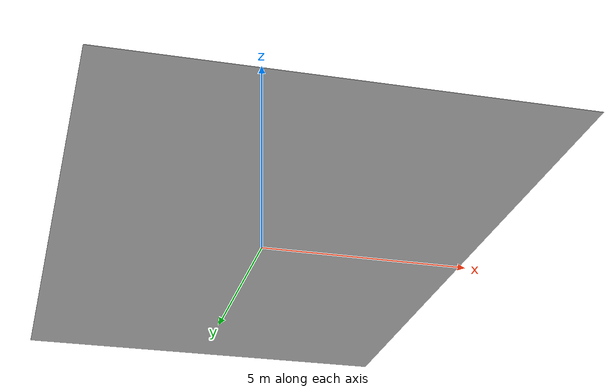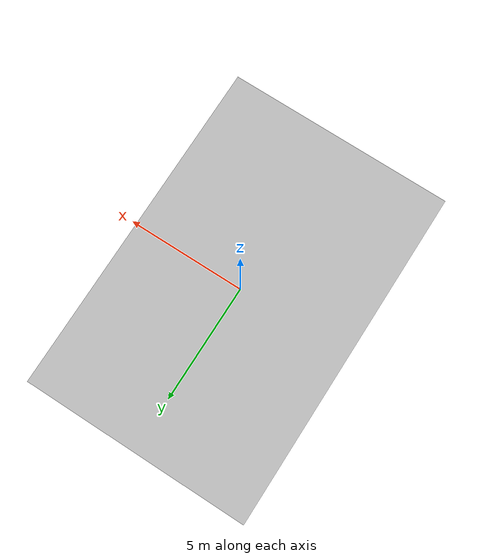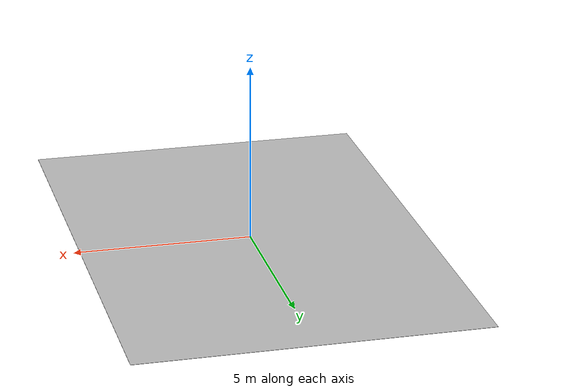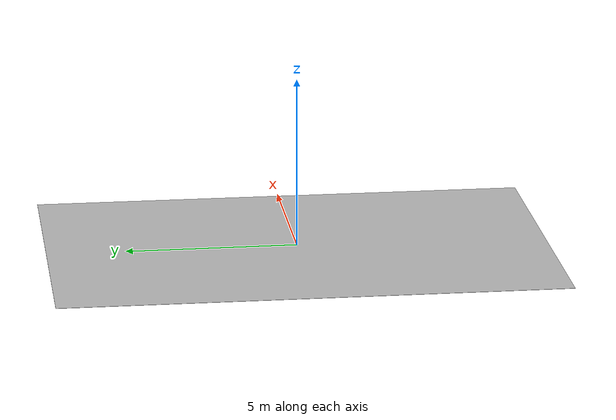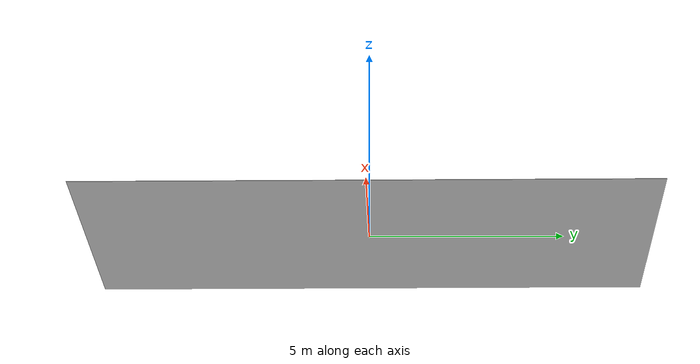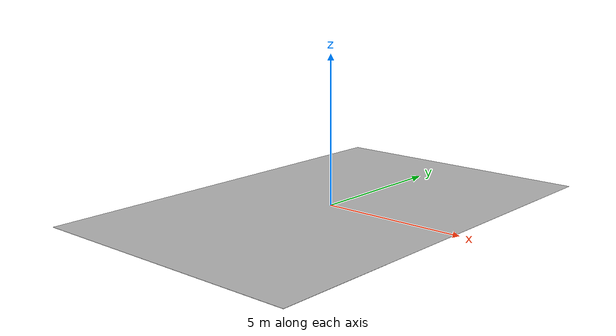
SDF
<?xml version='1.0'?>
<sdf version='1.7'>
  <model name='road'>
    <link name='link_0'>
      <inertial>
        <mass>1.39978</mass>
        <inertia>
          <ixx>24.9463</ixx>
          <ixy>0</ixy>
          <ixz>0</ixz>
          <iyy>10.9133</iyy>
          <iyz>0</iyz>
          <izz>35.8596</izz>
        </inertia>
        <pose>0 0 0 0 -0 0</pose>
      </inertial>
      <pose>-0 -0 -0 0 -0 0</pose>
      <visual name='visual'>
        <pose>0 0 0 0 -0 0</pose>
        <geometry>
          <box>
            <size>9.6725 14.6239 0.00985</size>
          </box>
        </geometry>
        <material>
          <script>
            <uri>model://road_line_test/materials/scripts</uri>
            <uri>model://road_line_test/materials/textures</uri>
            <name>road_line_test/Diffuse</name>
          </script>
        </material>
        <transparency>0</transparency>
        <cast_shadows>1</cast_shadows>
      </visual>
      <collision name='collision'>
        <laser_retro>0</laser_retro>
        <max_contacts>10</max_contacts>
        <pose>0 0 0 0 -0 0</pose>
        <geometry>
          <box>
            <size>9.6725 14.6239 0.00985</size>
          </box>
        </geometry>
        <surface>
          <friction>
            <ode>
              <mu>1</mu>
              <mu2>1</mu2>
              <fdir1>0 0 0</fdir1>
              <slip1>0</slip1>
              <slip2>0</slip2>
            </ode>
            <torsional>
              <coefficient>1</coefficient>
              <patch_radius>0</patch_radius>
              <surface_radius>0</surface_radius>
              <use_patch_radius>1</use_patch_radius>
              <ode>
                <slip>0</slip>
              </ode>
            </torsional>
          </friction>
          <bounce>
            <restitution_coefficient>0</restitution_coefficient>
            <threshold>1e+06</threshold>
          </bounce>
          <contact>
            <collide_without_contact>0</collide_without_contact>
            <collide_without_contact_bitmask>1</collide_without_contact_bitmask>
            <collide_bitmask>1</collide_bitmask>
            <ode>
              <soft_cfm>0</soft_cfm>
              <soft_erp>0.2</soft_erp>
              <kp>1e+13</kp>
              <kd>1</kd>
              <max_vel>0.01</max_vel>
              <min_depth>0</min_depth>
            </ode>
            <bullet>
              <split_impulse>1</split_impulse>
              <split_impulse_penetration_threshold>-0.01</split_impulse_penetration_threshold>
              <soft_cfm>0</soft_cfm>
              <soft_erp>0.2</soft_erp>
              <kp>1e+13</kp>
              <kd>1</kd>
            </bullet>
          </contact>
        </surface>
      </collision>
    </link>
    <static>0</static>
    <allow_auto_disable>1</allow_auto_disable>
  </model>
</sdf>
